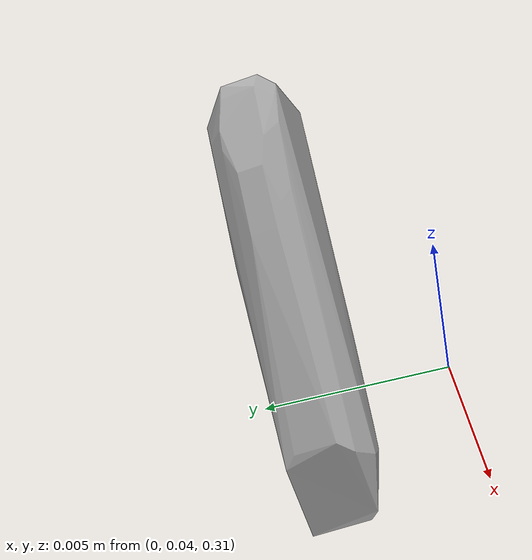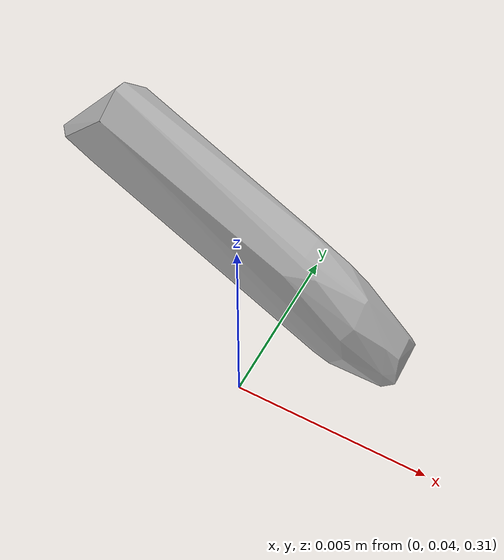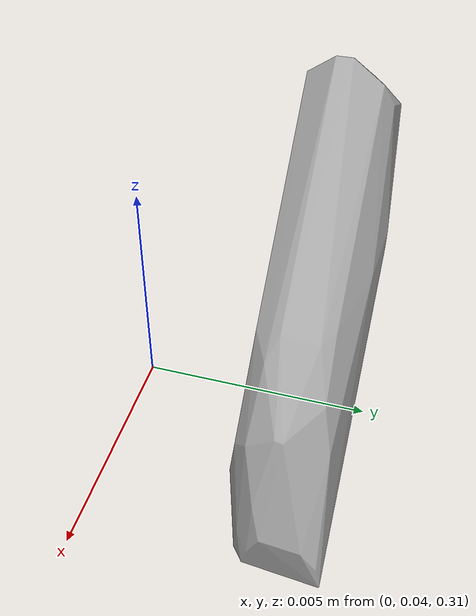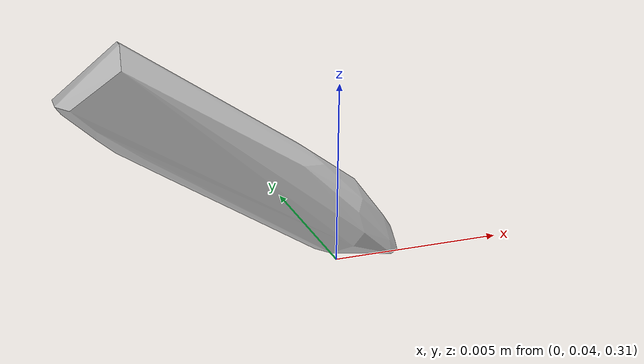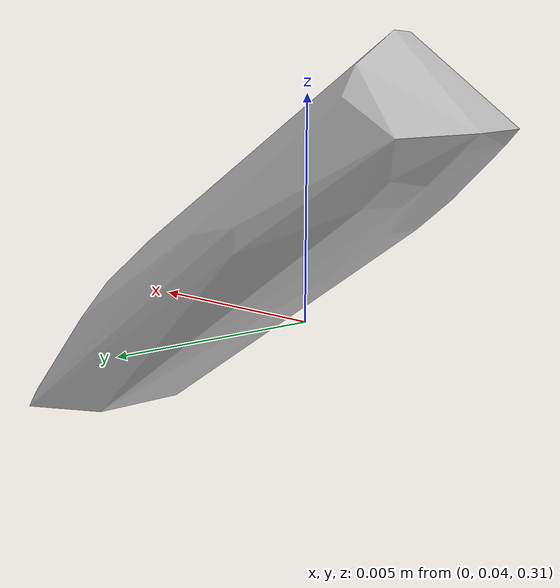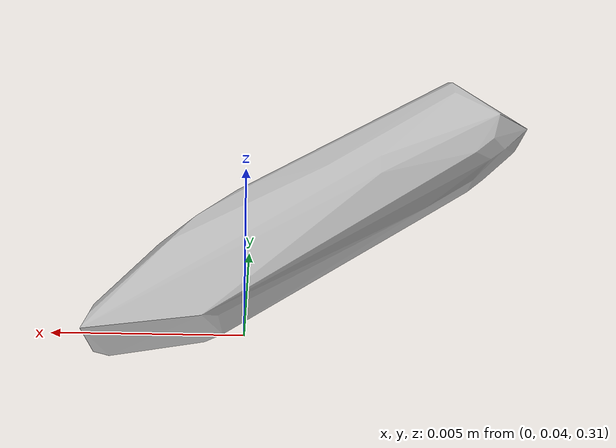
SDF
<?xml version="1.0"?>
<sdf version="1.7">
  <model name="vascular_partexport005">
    <link name="vascular_partexport005_body">
      <visual name="vascular_partexport005_visual">
        <geometry>
          <mesh>
            <uri>vascular_partexport005.obj</uri>
          </mesh>
        </geometry>
      </visual>
      <collision name="vascular_partexport005_collision">
        <geometry>
          <mesh>
            <uri>vascular_partexport005.obj</uri>
          </mesh>
        </geometry>
      </collision>
    </link>
    <frame name="vascular_partexport005_center">
      <pose relative_to="vascular_partexport005_body">0 0 0 0 0 0</pose>
    </frame>
  </model>
</sdf>
